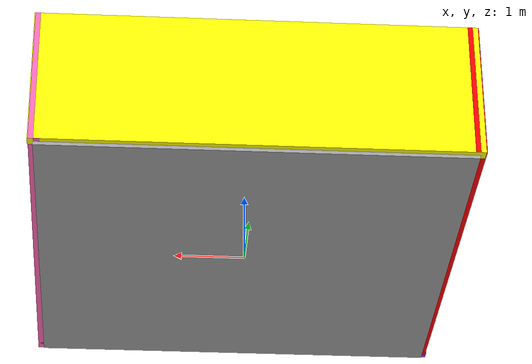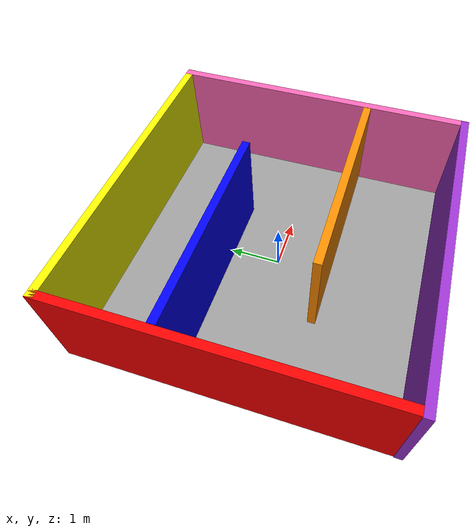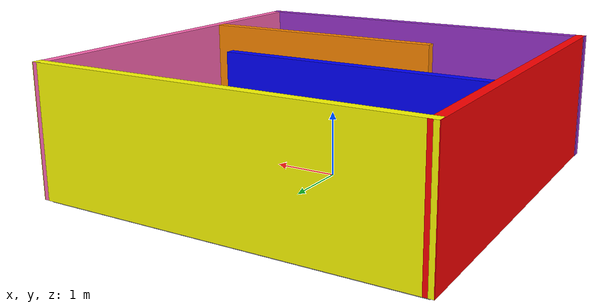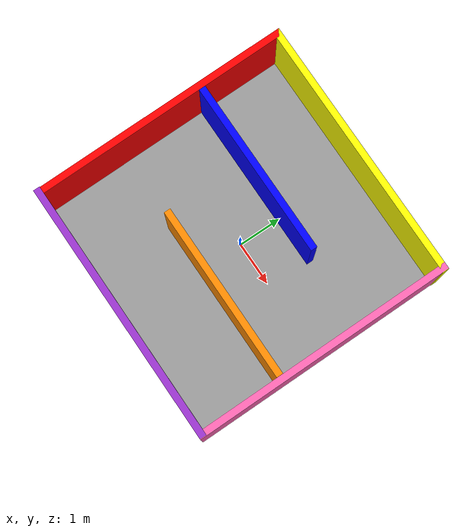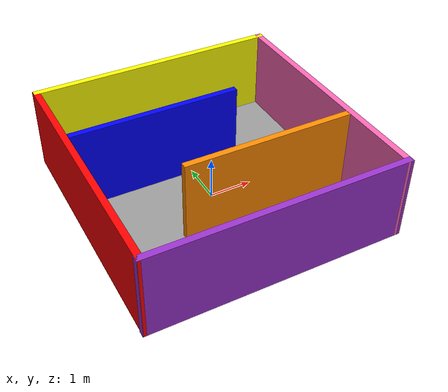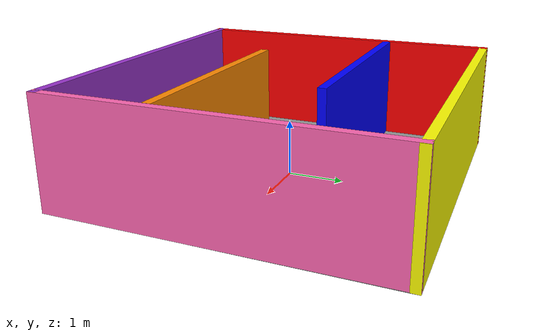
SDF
<?xml version='1.0'?>
<sdf version='1.6'>
  <model name='circuit_rgb'>
    <link name='Wall_10'>
      <pose frame=''>-0.0015 2.925 0.5 0 -0 3.14159</pose>
      <inertial>
        <mass>1</mass>
        <pose frame=''>0 0 0 0 -0 0</pose>
        <inertia>
          <ixx>1</ixx>
          <ixy>0</ixy>
          <ixz>0</ixz>
          <iyy>1</iyy>
          <iyz>0</iyz>
          <izz>1</izz>
        </inertia>
      </inertial>
      <self_collide>0</self_collide>
      <kinematic>0</kinematic>
      <visual name='Wall_10_Visual'>
        <pose frame=''>0 0 0.5 0 -0 0</pose>
        <geometry>
          <box>
            <size>6 0.15 2</size>
          </box>
        </geometry>
        <material>
          <script>
            <uri>file://media/materials/scripts/gazebo.material</uri>
            <name>Gazebo/Grey</name>
          </script>
          <ambient>1 1 0 1</ambient>
          <shader type='pixel'>
            <normal_map>__default__</normal_map>
          </shader>
          <diffuse>1 1 0 1</diffuse>
          <specular>0.01 0.01 0.01 1</specular>
          <emissive>0 0 0 1</emissive>
        </material>
        <cast_shadows>1</cast_shadows>
        <transparency>0</transparency>
      </visual>
      <collision name='Wall_10_Collision'>
        <laser_retro>0</laser_retro>
        <max_contacts>10</max_contacts>
        <pose frame=''>0 0 0.5 0 -0 0</pose>
        <geometry>
          <box>
            <size>6 0.15 2</size>
          </box>
        </geometry>
        <surface>
          <friction>
            <ode>
              <mu>1</mu>
              <mu2>1</mu2>
              <fdir1>0 0 0</fdir1>
              <slip1>0</slip1>
              <slip2>0</slip2>
            </ode>
            <torsional>
              <coefficient>1</coefficient>
              <patch_radius>0</patch_radius>
              <surface_radius>0</surface_radius>
              <use_patch_radius>1</use_patch_radius>
              <ode>
                <slip>0</slip>
              </ode>
            </torsional>
          </friction>
          <bounce>
            <restitution_coefficient>0</restitution_coefficient>
            <threshold>1e+06</threshold>
          </bounce>
          <contact>
            <collide_without_contact>0</collide_without_contact>
            <collide_without_contact_bitmask>1</collide_without_contact_bitmask>
            <collide_bitmask>1</collide_bitmask>
            <ode>
              <soft_cfm>0</soft_cfm>
              <soft_erp>0.2</soft_erp>
              <kp>1e+13</kp>
              <kd>1</kd>
              <max_vel>0.01</max_vel>
              <min_depth>0</min_depth>
            </ode>
            <bullet>
              <split_impulse>1</split_impulse>
              <split_impulse_penetration_threshold>-0.01</split_impulse_penetration_threshold>
              <soft_cfm>0</soft_cfm>
              <soft_erp>0.2</soft_erp>
              <kp>1e+13</kp>
              <kd>1</kd>
            </bullet>
          </contact>
        </surface>
      </collision>
    </link>
    <link name='Wall_10_clone'>
      <pose frame=''>-0.0015 -2.925 0.5 0 -0 0</pose>
      <inertial>
        <mass>1</mass>
        <pose frame=''>0 0 0 0 -0 0</pose>
        <inertia>
          <ixx>1</ixx>
          <ixy>0</ixy>
          <ixz>0</ixz>
          <iyy>1</iyy>
          <iyz>0</iyz>
          <izz>1</izz>
        </inertia>
      </inertial>
      <self_collide>0</self_collide>
      <kinematic>0</kinematic>
      <visual name='Wall_10_Visual'>
        <pose frame=''>0 0 0.5 0 -0 0</pose>
        <geometry>
          <box>
            <size>6 0.15 2</size>
          </box>
        </geometry>
        <material>
          <script>
            <uri>file://media/materials/scripts/gazebo.material</uri>
            <name>Gazebo/Grey</name>
          </script>
          <ambient>0.6 0.2 0.8 1</ambient>
          <shader type='pixel'>
            <normal_map>__default__</normal_map>
          </shader>
          <diffuse>0.6 0.2 0.8 1</diffuse>
          <specular>0.01 0.01 0.01 1</specular>
          <emissive>0 0 0 1</emissive>
        </material>
        <cast_shadows>1</cast_shadows>
        <transparency>0</transparency>
      </visual>
      <visual name='ModelPreview_1::Wall_10_clone::visual_6'>
        <pose frame=''>0 0 0.5 0 -0 0</pose>
        <geometry>
          <box>
            <size>6 0.15 2</size>
          </box>
        </geometry>
        <material>
          <script>
            <uri>file://media/materials/scripts/gazebo.material</uri>
            <name>Gazebo/Grey</name>
          </script>
          <ambient>0.6 0.2 0.8 1</ambient>
          <shader type='pixel'>
            <normal_map>__default__</normal_map>
          </shader>
          <diffuse>0.6 0.2 0.8 1</diffuse>
          <specular>0.01 0.01 0.01 1</specular>
          <emissive>0 0 0 1</emissive>
        </material>
        <cast_shadows>1</cast_shadows>
        <transparency>0</transparency>
      </visual>
      <visual name='ModelPreview_1::Wall_10_clone::visual_5'>
        <pose frame=''>0 0 0.5 0 -0 0</pose>
        <geometry>
          <box>
            <size>6 0.15 2</size>
          </box>
        </geometry>
        <material>
          <script>
            <uri>file://media/materials/scripts/gazebo.material</uri>
            <name>Gazebo/Grey</name>
          </script>
          <ambient>0.6 0.2 0.8 1</ambient>
          <shader type='pixel'>
            <normal_map>__default__</normal_map>
          </shader>
          <diffuse>0.6 0.2 0.8 1</diffuse>
          <specular>0.01 0.01 0.01 1</specular>
          <emissive>0 0 0 1</emissive>
        </material>
        <cast_shadows>1</cast_shadows>
        <transparency>0</transparency>
      </visual>
      <visual name='ModelPreview_1::Wall_10_clone::visual_7'>
        <pose frame=''>0 0 0.5 0 -0 0</pose>
        <geometry>
          <box>
            <size>6 0.15 2</size>
          </box>
        </geometry>
        <material>
          <script>
            <uri>file://media/materials/scripts/gazebo.material</uri>
            <name>Gazebo/Grey</name>
          </script>
          <ambient>0.6 0.2 0.8 1</ambient>
          <shader type='pixel'>
            <normal_map>__default__</normal_map>
          </shader>
          <diffuse>0.6 0.2 0.8 1</diffuse>
          <specular>0.01 0.01 0.01 1</specular>
          <emissive>0 0 0 1</emissive>
        </material>
        <cast_shadows>1</cast_shadows>
        <transparency>0</transparency>
      </visual>
      <collision name='Wall_10_Collision'>
        <laser_retro>0</laser_retro>
        <max_contacts>10</max_contacts>
        <pose frame=''>0 0 0.5 0 -0 0</pose>
        <geometry>
          <box>
            <size>6 0.15 2</size>
          </box>
        </geometry>
        <surface>
          <friction>
            <ode>
              <mu>1</mu>
              <mu2>1</mu2>
              <fdir1>0 0 0</fdir1>
              <slip1>0</slip1>
              <slip2>0</slip2>
            </ode>
            <torsional>
              <coefficient>1</coefficient>
              <patch_radius>0</patch_radius>
              <surface_radius>0</surface_radius>
              <use_patch_radius>1</use_patch_radius>
              <ode>
                <slip>0</slip>
              </ode>
            </torsional>
          </friction>
          <bounce>
            <restitution_coefficient>0</restitution_coefficient>
            <threshold>1e+06</threshold>
          </bounce>
          <contact>
            <collide_without_contact>0</collide_without_contact>
            <collide_without_contact_bitmask>1</collide_without_contact_bitmask>
            <collide_bitmask>1</collide_bitmask>
            <ode>
              <soft_cfm>0</soft_cfm>
              <soft_erp>0.2</soft_erp>
              <kp>1e+13</kp>
              <kd>1</kd>
              <max_vel>0.01</max_vel>
              <min_depth>0</min_depth>
            </ode>
            <bullet>
              <split_impulse>1</split_impulse>
              <split_impulse_penetration_threshold>-0.01</split_impulse_penetration_threshold>
              <soft_cfm>0</soft_cfm>
              <soft_erp>0.2</soft_erp>
              <kp>1e+13</kp>
              <kd>1</kd>
            </bullet>
          </contact>
        </surface>
      </collision>
    </link>
    <link name='Wall_10_clone_clone'>
      <pose frame=''>-2.925 0 0.5 0 0 -1.567</pose>
      <inertial>
        <mass>1</mass>
        <pose frame=''>0 0 0 0 -0 0</pose>
        <inertia>
          <ixx>1</ixx>
          <ixy>0</ixy>
          <ixz>0</ixz>
          <iyy>1</iyy>
          <iyz>0</iyz>
          <izz>1</izz>
        </inertia>
      </inertial>
      <self_collide>0</self_collide>
      <kinematic>0</kinematic>
      <visual name='ModelPreview_1::Wall_10_clone_clone::visual_5'>
        <pose frame=''>0 0 0.5 0 -0 0</pose>
        <geometry>
          <box>
            <size>6 0.15 2</size>
          </box>
        </geometry>
        <material>
          <script>
            <uri>file://media/materials/scripts/gazebo.material</uri>
            <name>Gazebo/Grey</name>
          </script>
          <ambient>1 0 0 1</ambient>
          <shader type='pixel'>
            <normal_map>__default__</normal_map>
          </shader>
          <diffuse>1 0 0 1</diffuse>
          <specular>0.01 0.01 0.01 1</specular>
          <emissive>0 0 0 1</emissive>
        </material>
        <cast_shadows>1</cast_shadows>
        <transparency>0</transparency>
      </visual>
      <visual name='ModelPreview_1::Wall_10_clone_clone::visual_6'>
        <pose frame=''>0 0 0.5 0 -0 0</pose>
        <geometry>
          <box>
            <size>6 0.15 2</size>
          </box>
        </geometry>
        <material>
          <script>
            <uri>file://media/materials/scripts/gazebo.material</uri>
            <name>Gazebo/Grey</name>
          </script>
          <ambient>1 0 0 1</ambient>
          <shader type='pixel'>
            <normal_map>__default__</normal_map>
          </shader>
          <diffuse>1 0 0 1</diffuse>
          <specular>0.01 0.01 0.01 1</specular>
          <emissive>0 0 0 1</emissive>
        </material>
        <cast_shadows>1</cast_shadows>
        <transparency>0</transparency>
      </visual>
      <visual name='ModelPreview_1::Wall_10_clone_clone::visual_7'>
        <pose frame=''>0 0 0.5 0 -0 0</pose>
        <geometry>
          <box>
            <size>6 0.15 2</size>
          </box>
        </geometry>
        <material>
          <script>
            <uri>file://media/materials/scripts/gazebo.material</uri>
            <name>Gazebo/Grey</name>
          </script>
          <ambient>1 0 0 1</ambient>
          <shader type='pixel'>
            <normal_map>__default__</normal_map>
          </shader>
          <diffuse>1 0 0 1</diffuse>
          <specular>0.01 0.01 0.01 1</specular>
          <emissive>0 0 0 1</emissive>
        </material>
        <cast_shadows>1</cast_shadows>
        <transparency>0</transparency>
      </visual>
      <visual name='Wall_10_Visual'>
        <pose frame=''>0 0 0.5 0 -0 0</pose>
        <geometry>
          <box>
            <size>6 0.15 2</size>
          </box>
        </geometry>
        <material>
          <script>
            <uri>file://media/materials/scripts/gazebo.material</uri>
            <name>Gazebo/Grey</name>
          </script>
          <ambient>1 0 0 1</ambient>
          <shader type='pixel'>
            <normal_map>__default__</normal_map>
          </shader>
          <diffuse>1 0 0 1</diffuse>
          <specular>0.01 0.01 0.01 1</specular>
          <emissive>0 0 0 1</emissive>
        </material>
        <cast_shadows>1</cast_shadows>
        <transparency>0</transparency>
      </visual>
      <collision name='Wall_10_Collision'>
        <laser_retro>0</laser_retro>
        <max_contacts>10</max_contacts>
        <pose frame=''>0 0 0.5 0 -0 0</pose>
        <geometry>
          <box>
            <size>6 0.15 2</size>
          </box>
        </geometry>
        <surface>
          <friction>
            <ode>
              <mu>1</mu>
              <mu2>1</mu2>
              <fdir1>0 0 0</fdir1>
              <slip1>0</slip1>
              <slip2>0</slip2>
            </ode>
            <torsional>
              <coefficient>1</coefficient>
              <patch_radius>0</patch_radius>
              <surface_radius>0</surface_radius>
              <use_patch_radius>1</use_patch_radius>
              <ode>
                <slip>0</slip>
              </ode>
            </torsional>
          </friction>
          <bounce>
            <restitution_coefficient>0</restitution_coefficient>
            <threshold>1e+06</threshold>
          </bounce>
          <contact>
            <collide_without_contact>0</collide_without_contact>
            <collide_without_contact_bitmask>1</collide_without_contact_bitmask>
            <collide_bitmask>1</collide_bitmask>
            <ode>
              <soft_cfm>0</soft_cfm>
              <soft_erp>0.2</soft_erp>
              <kp>1e+13</kp>
              <kd>1</kd>
              <max_vel>0.01</max_vel>
              <min_depth>0</min_depth>
            </ode>
            <bullet>
              <split_impulse>1</split_impulse>
              <split_impulse_penetration_threshold>-0.01</split_impulse_penetration_threshold>
              <soft_cfm>0</soft_cfm>
              <soft_erp>0.2</soft_erp>
              <kp>1e+13</kp>
              <kd>1</kd>
            </bullet>
          </contact>
        </surface>
      </collision>
    </link>
    <link name='Wall_10_clone_clone_0'>
      <pose frame=''>2.925 0 0.5 0 0 -1.567</pose>
      <inertial>
        <mass>1</mass>
        <pose frame=''>0 0 0 0 -0 0</pose>
        <inertia>
          <ixx>1</ixx>
          <ixy>0</ixy>
          <ixz>0</ixz>
          <iyy>1</iyy>
          <iyz>0</iyz>
          <izz>1</izz>
        </inertia>
      </inertial>
      <self_collide>0</self_collide>
      <kinematic>0</kinematic>
      <visual name='ModelPreview_1::Wall_10_clone_clone_0::visual_6'>
        <pose frame=''>0 0 0.5 0 -0 0</pose>
        <geometry>
          <box>
            <size>6 0.15 2</size>
          </box>
        </geometry>
        <material>
          <script>
            <uri>file://media/materials/scripts/gazebo.material</uri>
            <name>Gazebo/Grey</name>
          </script>
          <ambient>1 0.4 0.7 1</ambient>
          <shader type='pixel'>
            <normal_map>__default__</normal_map>
          </shader>
          <diffuse>1 0.4 0.7 1</diffuse>
          <specular>0.01 0.01 0.01 1</specular>
          <emissive>0 0 0 1</emissive>
        </material>
        <cast_shadows>1</cast_shadows>
        <transparency>0</transparency>
      </visual>
      <visual name='Wall_10_Visual'>
        <pose frame=''>0 0 0.5 0 -0 0</pose>
        <geometry>
          <box>
            <size>6 0.15 2</size>
          </box>
        </geometry>
        <material>
          <script>
            <uri>file://media/materials/scripts/gazebo.material</uri>
            <name>Gazebo/Grey</name>
          </script>
          <ambient>1 0.4 0.7 1</ambient>
          <shader type='pixel'>
            <normal_map>__default__</normal_map>
          </shader>
          <diffuse>1 0.4 0.7 1</diffuse>
          <specular>0.01 0.01 0.01 1</specular>
          <emissive>0 0 0 1</emissive>
        </material>
        <cast_shadows>1</cast_shadows>
        <transparency>0</transparency>
      </visual>
      <visual name='ModelPreview_1::Wall_10_clone_clone_0::visual_5'>
        <pose frame=''>0 0 0.5 0 -0 0</pose>
        <geometry>
          <box>
            <size>6 0.15 2</size>
          </box>
        </geometry>
        <material>
          <script>
            <uri>file://media/materials/scripts/gazebo.material</uri>
            <name>Gazebo/Grey</name>
          </script>
          <ambient>1 0.4 0.7 1</ambient>
          <shader type='pixel'>
            <normal_map>__default__</normal_map>
          </shader>
          <diffuse>1 0.4 0.7 1</diffuse>
          <specular>0.01 0.01 0.01 1</specular>
          <emissive>0 0 0 1</emissive>
        </material>
        <cast_shadows>1</cast_shadows>
        <transparency>0</transparency>
      </visual>
      <visual name='ModelPreview_1::Wall_10_clone_clone_0::visual_7'>
        <pose frame=''>0 0 0.5 0 -0 0</pose>
        <geometry>
          <box>
            <size>6 0.15 2</size>
          </box>
        </geometry>
        <material>
          <script>
            <uri>file://media/materials/scripts/gazebo.material</uri>
            <name>Gazebo/Grey</name>
          </script>
          <ambient>1 0.4 0.7 1</ambient>
          <shader type='pixel'>
            <normal_map>__default__</normal_map>
          </shader>
          <diffuse>1 0.4 0.7 1</diffuse>
          <specular>0.01 0.01 0.01 1</specular>
          <emissive>0 0 0 1</emissive>
        </material>
        <cast_shadows>1</cast_shadows>
        <transparency>0</transparency>
      </visual>
      <collision name='Wall_10_Collision'>
        <laser_retro>0</laser_retro>
        <max_contacts>10</max_contacts>
        <pose frame=''>0 0 0.5 0 -0 0</pose>
        <geometry>
          <box>
            <size>6 0.15 2</size>
          </box>
        </geometry>
        <surface>
          <friction>
            <ode>
              <mu>1</mu>
              <mu2>1</mu2>
              <fdir1>0 0 0</fdir1>
              <slip1>0</slip1>
              <slip2>0</slip2>
            </ode>
            <torsional>
              <coefficient>1</coefficient>
              <patch_radius>0</patch_radius>
              <surface_radius>0</surface_radius>
              <use_patch_radius>1</use_patch_radius>
              <ode>
                <slip>0</slip>
              </ode>
            </torsional>
          </friction>
          <bounce>
            <restitution_coefficient>0</restitution_coefficient>
            <threshold>1e+06</threshold>
          </bounce>
          <contact>
            <collide_without_contact>0</collide_without_contact>
            <collide_without_contact_bitmask>1</collide_without_contact_bitmask>
            <collide_bitmask>1</collide_bitmask>
            <ode>
              <soft_cfm>0</soft_cfm>
              <soft_erp>0.2</soft_erp>
              <kp>1e+13</kp>
              <kd>1</kd>
              <max_vel>0.01</max_vel>
              <min_depth>0</min_depth>
            </ode>
            <bullet>
              <split_impulse>1</split_impulse>
              <split_impulse_penetration_threshold>-0.01</split_impulse_penetration_threshold>
              <soft_cfm>0</soft_cfm>
              <soft_erp>0.2</soft_erp>
              <kp>1e+13</kp>
              <kd>1</kd>
            </bullet>
          </contact>
        </surface>
      </collision>
    </link>
    <link name='Wall_15_clone'>
      <pose frame=''>-0.85 1 0.5 0 -0 0</pose>
      <inertial>
        <mass>1</mass>
        <pose frame=''>0 0 0 0 -0 0</pose>
        <inertia>
          <ixx>1</ixx>
          <ixy>0</ixy>
          <ixz>0</ixz>
          <iyy>1</iyy>
          <iyz>0</iyz>
          <izz>1</izz>
        </inertia>
      </inertial>
      <self_collide>0</self_collide>
      <kinematic>0</kinematic>
      <visual name='ModelPreview_1::Wall_15_clone::Wall_15_Visual'>
        <pose frame=''>0 0 0.5 0 -0 0</pose>
        <geometry>
          <box>
            <size>4 0.15 2</size>
          </box>
        </geometry>
        <material>
          <script>
            <uri>file://media/materials/scripts/gazebo.material</uri>
            <name>Gazebo/Grey</name>
          </script>
          <ambient>0 0 1 1</ambient>
          <shader type='pixel'>
            <normal_map>__default__</normal_map>
          </shader>
          <diffuse>0 0 1 1</diffuse>
          <specular>0.01 0.01 0.01 1</specular>
          <emissive>0 0 0 1</emissive>
        </material>
        <cast_shadows>1</cast_shadows>
        <transparency>0</transparency>
      </visual>
      <collision name='Wall_15_Collision'>
        <laser_retro>0</laser_retro>
        <max_contacts>10</max_contacts>
        <pose frame=''>0 0 0.5 0 -0 0</pose>
        <geometry>
          <box>
            <size>4 0.15 2</size>
          </box>
        </geometry>
        <surface>
          <friction>
            <ode>
              <mu>1</mu>
              <mu2>1</mu2>
              <fdir1>0 0 0</fdir1>
              <slip1>0</slip1>
              <slip2>0</slip2>
            </ode>
            <torsional>
              <coefficient>1</coefficient>
              <patch_radius>0</patch_radius>
              <surface_radius>0</surface_radius>
              <use_patch_radius>1</use_patch_radius>
              <ode>
                <slip>0</slip>
              </ode>
            </torsional>
          </friction>
          <bounce>
            <restitution_coefficient>0</restitution_coefficient>
            <threshold>1e+06</threshold>
          </bounce>
          <contact>
            <collide_without_contact>0</collide_without_contact>
            <collide_without_contact_bitmask>1</collide_without_contact_bitmask>
            <collide_bitmask>1</collide_bitmask>
            <ode>
              <soft_cfm>0</soft_cfm>
              <soft_erp>0.2</soft_erp>
              <kp>1e+13</kp>
              <kd>1</kd>
              <max_vel>0.01</max_vel>
              <min_depth>0</min_depth>
            </ode>
            <bullet>
              <split_impulse>1</split_impulse>
              <split_impulse_penetration_threshold>-0.01</split_impulse_penetration_threshold>
              <soft_cfm>0</soft_cfm>
              <soft_erp>0.2</soft_erp>
              <kp>1e+13</kp>
              <kd>1</kd>
            </bullet>
          </contact>
        </surface>
      </collision>
    </link>
    <link name='Wall_15_clone_clone'>
      <pose frame=''>0.85 -1 0.5 0 -0 0</pose>
      <inertial>
        <mass>1</mass>
        <pose frame=''>0 0 0 0 -0 0</pose>
        <inertia>
          <ixx>1</ixx>
          <ixy>0</ixy>
          <ixz>0</ixz>
          <iyy>1</iyy>
          <iyz>0</iyz>
          <izz>1</izz>
        </inertia>
      </inertial>
      <self_collide>0</self_collide>
      <kinematic>0</kinematic>
      <visual name='Wall_15_Visual'>
        <pose frame=''>0 0 0.5 0 -0 0</pose>
        <geometry>
          <box>
            <size>4 0.15 2</size>
          </box>
        </geometry>
        <material>
          <script>
            <uri>file://media/materials/scripts/gazebo.material</uri>
            <name>Gazebo/Grey</name>
          </script>
          <ambient>1 0.54 0 1</ambient>
          <shader type='pixel'>
            <normal_map>__default__</normal_map>
          </shader>
          <diffuse>1 0.54 0 1</diffuse>
          <specular>0.01 0.01 0.01 1</specular>
          <emissive>0 0 0 1</emissive>
        </material>
        <cast_shadows>1</cast_shadows>
        <transparency>0</transparency>
      </visual>
      <collision name='Wall_15_Collision'>
        <laser_retro>0</laser_retro>
        <max_contacts>10</max_contacts>
        <pose frame=''>0 0 0.5 0 -0 0</pose>
        <geometry>
          <box>
            <size>4 0.15 2</size>
          </box>
        </geometry>
        <surface>
          <friction>
            <ode>
              <mu>1</mu>
              <mu2>1</mu2>
              <fdir1>0 0 0</fdir1>
              <slip1>0</slip1>
              <slip2>0</slip2>
            </ode>
            <torsional>
              <coefficient>1</coefficient>
              <patch_radius>0</patch_radius>
              <surface_radius>0</surface_radius>
              <use_patch_radius>1</use_patch_radius>
              <ode>
                <slip>0</slip>
              </ode>
            </torsional>
          </friction>
          <bounce>
            <restitution_coefficient>0</restitution_coefficient>
            <threshold>1e+06</threshold>
          </bounce>
          <contact>
            <collide_without_contact>0</collide_without_contact>
            <collide_without_contact_bitmask>1</collide_without_contact_bitmask>
            <collide_bitmask>1</collide_bitmask>
            <ode>
              <soft_cfm>0</soft_cfm>
              <soft_erp>0.2</soft_erp>
              <kp>1e+13</kp>
              <kd>1</kd>
              <max_vel>0.01</max_vel>
              <min_depth>0</min_depth>
            </ode>
            <bullet>
              <split_impulse>1</split_impulse>
              <split_impulse_penetration_threshold>-0.01</split_impulse_penetration_threshold>
              <soft_cfm>0</soft_cfm>
              <soft_erp>0.2</soft_erp>
              <kp>1e+13</kp>
              <kd>1</kd>
            </bullet>
          </contact>
        </surface>
      </collision>
    </link>
    <link name='link_0'>
      <pose frame=''>0 0 2 0 -0 0</pose>
      <inertial>
        <mass>1</mass>
        <inertia>
          <ixx>0.166667</ixx>
          <ixy>0</ixy>
          <ixz>0</ixz>
          <iyy>0.166667</iyy>
          <iyz>0</iyz>
          <izz>0.166667</izz>
        </inertia>
        <pose frame=''>0 0 0 0 -0 0</pose>
      </inertial>
      <self_collide>0</self_collide>
      <kinematic>0</kinematic>
      <visual name='ModelPreview_4::link_0::visual_1'>
        <pose frame=''>0 0 0 0 -0 0</pose>
        <geometry>
          <box>
            <size>5.85 5.85 0.1</size>
          </box>
        </geometry>
        <material>
          <lighting>1</lighting>
          <script>
            <uri>file://media/materials/scripts/gazebo.material</uri>
            <name>Gazebo/Grey</name>
          </script>
          <ambient>0.3 0.3 0.3 1</ambient>
          <diffuse>0.7 0.7 0.7 1</diffuse>
          <specular>0.01 0.01 0.01 1</specular>
          <emissive>0 0 0 1</emissive>
          <shader type='vertex'>
            <normal_map>__default__</normal_map>
          </shader>
        </material>
        <cast_shadows>1</cast_shadows>
        <transparency>1</transparency>
      </visual>
      <visual name='visual'>
        <pose frame=''>0 0 0 0 -0 0</pose>
        <geometry>
          <box>
            <size>5.85 5.85 0.1</size>
          </box>
        </geometry>
        <material>
          <lighting>1</lighting>
          <script>
            <uri>file://media/materials/scripts/gazebo.material</uri>
            <name>Gazebo/Grey</name>
          </script>
          <ambient>0.3 0.3 0.3 1</ambient>
          <diffuse>0.7 0.7 0.7 1</diffuse>
          <specular>0.01 0.01 0.01 1</specular>
          <emissive>0 0 0 1</emissive>
          <shader type='vertex'>
            <normal_map>__default__</normal_map>
          </shader>
        </material>
        <cast_shadows>1</cast_shadows>
        <transparency>1</transparency>
      </visual>
      <collision name='collision'>
        <laser_retro>0</laser_retro>
        <max_contacts>10</max_contacts>
        <pose frame=''>0 0 0 0 -0 0</pose>
        <geometry>
          <box>
            <size>5.85 5.85 0.1</size>
          </box>
        </geometry>
        <surface>
          <friction>
            <ode>
              <mu>1</mu>
              <mu2>1</mu2>
              <fdir1>0 0 0</fdir1>
              <slip1>0</slip1>
              <slip2>0</slip2>
            </ode>
            <torsional>
              <coefficient>1</coefficient>
              <patch_radius>0</patch_radius>
              <surface_radius>0</surface_radius>
              <use_patch_radius>1</use_patch_radius>
              <ode>
                <slip>0</slip>
              </ode>
            </torsional>
          </friction>
          <bounce>
            <restitution_coefficient>0</restitution_coefficient>
            <threshold>1e+06</threshold>
          </bounce>
          <contact>
            <collide_without_contact>0</collide_without_contact>
            <collide_without_contact_bitmask>1</collide_without_contact_bitmask>
            <collide_bitmask>1</collide_bitmask>
            <ode>
              <soft_cfm>0</soft_cfm>
              <soft_erp>0.2</soft_erp>
              <kp>1e+13</kp>
              <kd>1</kd>
              <max_vel>0.01</max_vel>
              <min_depth>0</min_depth>
            </ode>
            <bullet>
              <split_impulse>1</split_impulse>
              <split_impulse_penetration_threshold>-0.01</split_impulse_penetration_threshold>
              <soft_cfm>0</soft_cfm>
              <soft_erp>0.2</soft_erp>
              <kp>1e+13</kp>
              <kd>1</kd>
            </bullet>
          </contact>
        </surface>
      </collision>
    </link>
    <link name='link_0_clone'>
      <pose frame=''>0 0 0 0 -0 0</pose>
      <inertial>
        <mass>1</mass>
        <inertia>
          <ixx>0.166667</ixx>
          <ixy>0</ixy>
          <ixz>0</ixz>
          <iyy>0.166667</iyy>
          <iyz>0</iyz>
          <izz>0.166667</izz>
        </inertia>
        <pose frame=''>0 0 0 0 -0 0</pose>
      </inertial>
      <self_collide>0</self_collide>
      <kinematic>0</kinematic>
      <gravity>1</gravity>
      <visual name='ModelPreview_4::link_0_clone::visual_1'>
        <pose frame=''>0 0 0 0 -0 0</pose>
        <geometry>
          <box>
            <size>5.85 5.85 0.1</size>
          </box>
        </geometry>
        <material>
          <lighting>1</lighting>
          <script>
            <uri>file://media/materials/scripts/gazebo.material</uri>
            <name>Gazebo/Grey</name>
          </script>
          <ambient>1 1 1 1</ambient>
          <diffuse>1 1 1 1</diffuse>
          <specular>0.01 0.01 0.01 1</specular>
          <emissive>0 0 0 1</emissive>
          <shader type='vertex'>
            <normal_map>__default__</normal_map>
          </shader>
        </material>
        <cast_shadows>1</cast_shadows>
        <transparency>0</transparency>
      </visual>
      <collision name='collision'>
        <laser_retro>0</laser_retro>
        <max_contacts>10</max_contacts>
        <pose frame=''>0 0 0 0 -0 0</pose>
        <geometry>
          <box>
            <size>5.85 5.85 0.1</size>
          </box>
        </geometry>
        <surface>
          <friction>
            <ode>
              <mu>1</mu>
              <mu2>1</mu2>
              <fdir1>0 0 0</fdir1>
              <slip1>0</slip1>
              <slip2>0</slip2>
            </ode>
            <torsional>
              <coefficient>1</coefficient>
              <patch_radius>0</patch_radius>
              <surface_radius>0</surface_radius>
              <use_patch_radius>1</use_patch_radius>
              <ode>
                <slip>0</slip>
              </ode>
            </torsional>
          </friction>
          <bounce>
            <restitution_coefficient>0</restitution_coefficient>
            <threshold>1e+06</threshold>
          </bounce>
          <contact>
            <collide_without_contact>0</collide_without_contact>
            <collide_without_contact_bitmask>1</collide_without_contact_bitmask>
            <collide_bitmask>1</collide_bitmask>
            <ode>
              <soft_cfm>0</soft_cfm>
              <soft_erp>0.2</soft_erp>
              <kp>1e+13</kp>
              <kd>1</kd>
              <max_vel>0.01</max_vel>
              <min_depth>0</min_depth>
            </ode>
            <bullet>
              <split_impulse>1</split_impulse>
              <split_impulse_penetration_threshold>-0.01</split_impulse_penetration_threshold>
              <soft_cfm>0</soft_cfm>
              <soft_erp>0.2</soft_erp>
              <kp>1e+13</kp>
              <kd>1</kd>
            </bullet>
          </contact>
        </surface>
      </collision>
    </link>
    <static>1</static>
    <allow_auto_disable>1</allow_auto_disable>
  </model>
</sdf>
